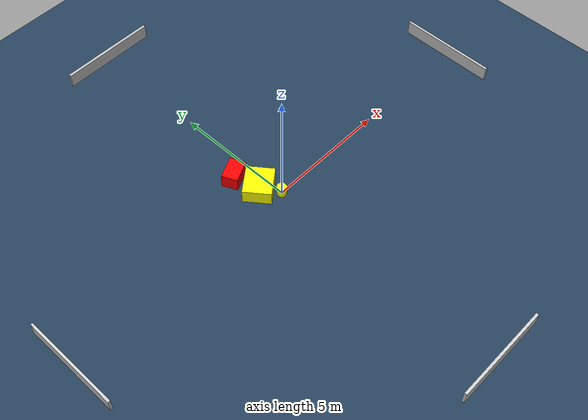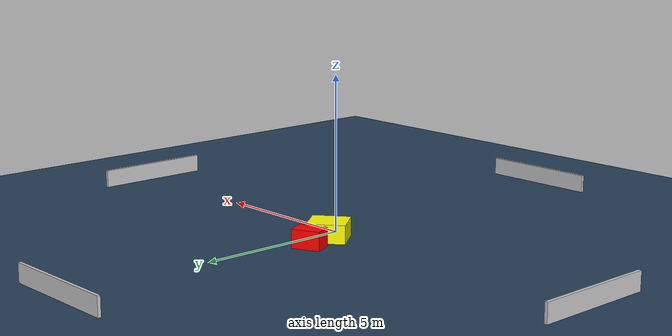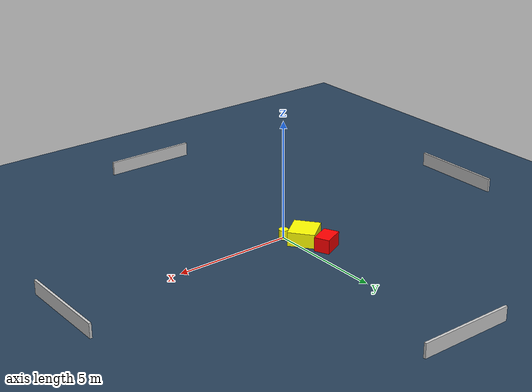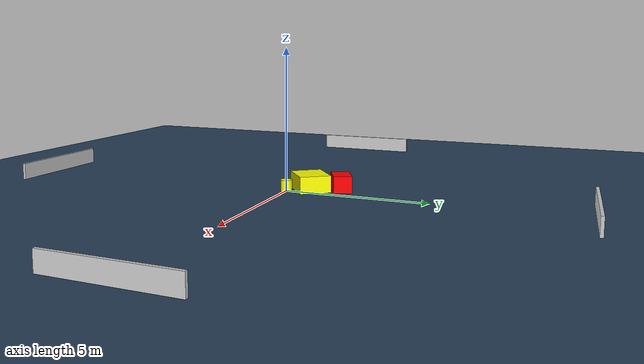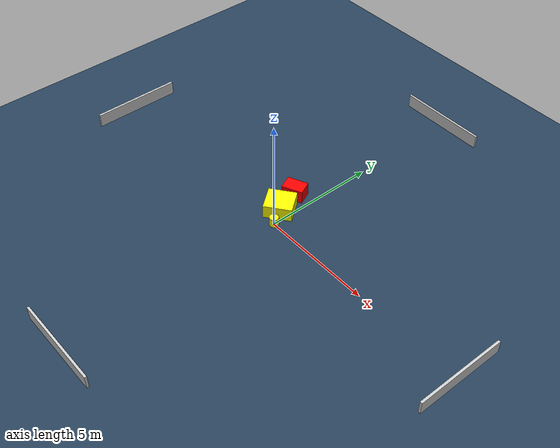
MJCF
<?xml version="1.0" ?>
<mujoco model="generated_environment">
  <option timestep="0.01" integrator="RK4" cone="elliptic"/>
  <default>
    <geom density="1"/>
  </default>
  <asset>
    <texture builtin="gradient" height="3072" name="skybox" rgb1="0.3 0.5 0.7" rgb2="0 0 0" type="skybox" width="512"/>
    <texture builtin="checker" height="300" name="groundplane" rgb1="0.2 0.3 0.4" rgb2="0.1 0.2 0.3" type="2d" width="300"/>
    <material name="groundplane" reflectance="0.2" texrepeat="5 5" texture="groundplane"/>
  </asset>
  <worldbody>
    <light dir="0 0 -1" directional="true" pos="0 0 1.5"/>
    <geom condim="3" friction="0.5 0.005 0.001" material="groundplane" name="floor" pos="0 0 0" size="0 0 0.05" type="plane"/>
    <body name="walls">
      <geom name="wall_1" condim="4" pos="-10.0 0.0 0.3" rgba="0.800000011920929 0.800000011920929 0.800000011920929 1.0" size="0.05 2.0 0.3" type="box"/>
      <geom name="wall_2" condim="4" pos="10.0 0.0 0.3" rgba="0.800000011920929 0.800000011920929 0.800000011920929 1.0" size="0.05 2.0 0.3" type="box"/>
      <geom name="wall_3" condim="4" pos="0.0 -10.0 0.3" rgba="0.800000011920929 0.800000011920929 0.800000011920929 1.0" size="2.0 0.05 0.3" type="box"/>
      <geom name="wall_4" condim="4" pos="0.0 10.0 0.3" rgba="0.800000011920929 0.800000011920929 0.800000011920929 1.0" size="2.0 0.05 0.3" type="box"/>
    </body>
    <body name="robot">
      <joint name="joint_x" type="slide" pos="0 0 0" axis="1 0 0"/>
      <joint name="joint_y" type="slide" pos="0 0 0" axis="0 1 0"/>
      <geom name="robot" type="cylinder" pos="0.0 0.0 0.2" size="0.2 0.2 0.0" mass="5.0" friction="1.0 0.005 0.0001" condim="4" rgba="1.0 1.0 0.0 1.0"/>
    </body>
    <body name="obstacle_1_movable">
      <geom name="obstacle_1_movable" condim="4" pos="-0.47871546169624934 0.7308912451684039 0.3" euler="0 0 307.4127629097914" friction="0.0 0.005 0.001" rgba="1.0 1.0 0.0 1.0" size="0.5591778285493967 0.610955667207207 0.3" type="box" mass="0.1"/>
      <joint type="free"/>
    </body>
    <body name="obstacle_2_static">
      <geom name="obstacle_2_static" condim="4" pos="-0.7613182106004985 1.776899191870138 0.3" euler="0 0 24.86496609136317" friction="0.0 0.005 0.001" rgba="1.0 0.0 0.0 1.0" size="0.4658336603235933 0.3236684403761137 0.3" type="box"/>
    </body>
  </worldbody>
  <actuator>
    <motor name="actuator_x" joint="joint_x" gear="1" ctrlrange="-1 1"/>
    <motor name="actuator_y" joint="joint_y" gear="1" ctrlrange="-1 1"/>
  </actuator>
</mujoco>
